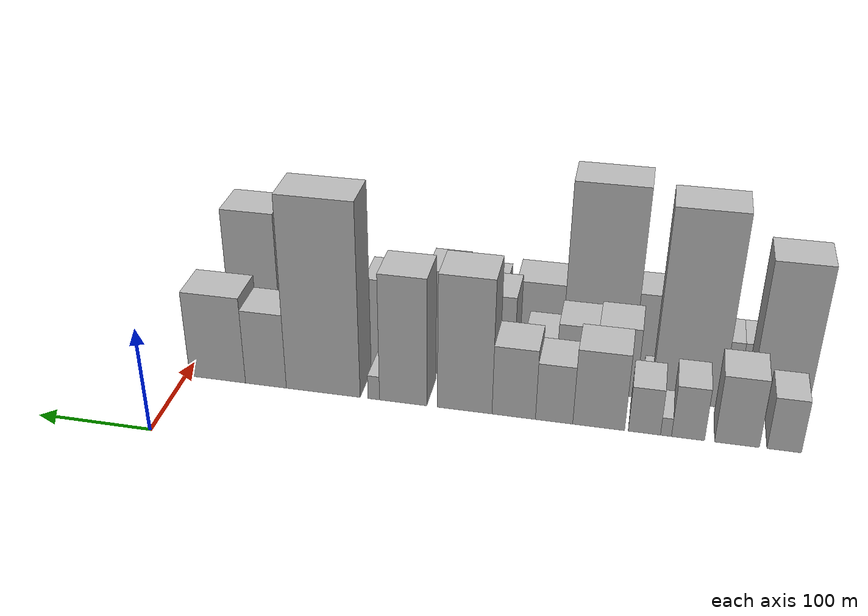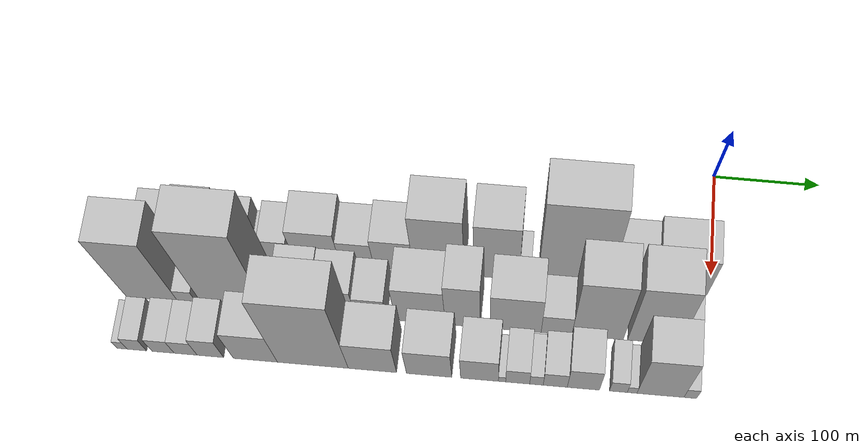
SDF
<sdf version="1.6">
 <world name="default">
  <model name="building_1">
   <static>1</static>
   <pose>100.0000 -515.4191 0 0.000000 0.000000 0.000000</pose>
   <link name="link">
    <pose>0 0 25.50 0 0 0</pose>
    <collision name="collision"><geometry><box><size>40.0000 27.1618 51.0000</size></box></geometry></collision>
    <visual name="visual">
     <cast_shadows>0</cast_shadows>
     <geometry><box><size>40.0000 27.1618 51.0000</size></box></geometry>
     <material>
      <script>
       <uri>model://HANNAS_wall/materials/scripts</uri>
       <uri>model://HANNAS_wall/materials/textures</uri>
       <name>vrc/HANNAS_wall</name>
      </script>
     </material>
    </visual>
   </link>
  </model>
  <model name="building_2">
   <static>1</static>
   <pose>100.0000 -477.9174 0 0.000000 0.000000 0.000000</pose>
   <link name="link">
    <pose>0 0 33.00 0 0 0</pose>
    <collision name="collision"><geometry><box><size>40.0000 35.8415 66.0000</size></box></geometry></collision>
    <visual name="visual">
     <cast_shadows>0</cast_shadows>
     <geometry><box><size>40.0000 35.8415 66.0000</size></box></geometry>
     <material>
      <script>
       <uri>model://HANNAS_wall/materials/scripts</uri>
       <uri>model://HANNAS_wall/materials/textures</uri>
       <name>vrc/HANNAS_wall</name>
      </script>
     </material>
    </visual>
   </link>
  </model>
  <model name="building_3">
   <static>1</static>
   <pose>100.0000 -438.5953 0 0.000000 0.000000 0.000000</pose>
   <link name="link">
    <pose>0 0 25.50 0 0 0</pose>
    <collision name="collision"><geometry><box><size>40.0000 26.8026 51.0000</size></box></geometry></collision>
    <visual name="visual">
     <cast_shadows>0</cast_shadows>
     <geometry><box><size>40.0000 26.8026 51.0000</size></box></geometry>
     <material>
      <script>
       <uri>model://HANNAS_wall/materials/scripts</uri>
       <uri>model://HANNAS_wall/materials/textures</uri>
       <name>vrc/HANNAS_wall</name>
      </script>
     </material>
    </visual>
   </link>
  </model>
  <model name="building_4">
   <static>1</static>
   <pose>100.0000 -420.7293 0 0.000000 0.000000 0.000000</pose>
   <link name="link">
    <pose>0 0 9.00 0 0 0</pose>
    <collision name="collision"><geometry><box><size>40.0000 8.9295 18.0000</size></box></geometry></collision>
    <visual name="visual">
     <cast_shadows>0</cast_shadows>
     <geometry><box><size>40.0000 8.9295 18.0000</size></box></geometry>
     <material>
      <script>
       <uri>model://HANNAS_wall/materials/scripts</uri>
       <uri>model://HANNAS_wall/materials/textures</uri>
       <name>vrc/HANNAS_wall</name>
      </script>
     </material>
    </visual>
   </link>
  </model>
  <model name="building_5">
   <static>1</static>
   <pose>100.0000 -403.0497 0 0.000000 0.000000 0.000000</pose>
   <link name="link">
    <pose>0 0 22.50 0 0 0</pose>
    <collision name="collision"><geometry><box><size>40.0000 26.4296 45.0000</size></box></geometry></collision>
    <visual name="visual">
     <cast_shadows>0</cast_shadows>
     <geometry><box><size>40.0000 26.4296 45.0000</size></box></geometry>
     <material>
      <script>
       <uri>model://HANNAS_wall/materials/scripts</uri>
       <uri>model://HANNAS_wall/materials/textures</uri>
       <name>vrc/HANNAS_wall</name>
      </script>
     </material>
    </visual>
   </link>
  </model>
  <model name="building_6">
   <static>1</static>
   <pose>100.0000 -365.2503 0 0.000000 0.000000 0.000000</pose>
   <link name="link">
    <pose>0 0 37.50 0 0 0</pose>
    <collision name="collision"><geometry><box><size>40.0000 43.1693 75.0000</size></box></geometry></collision>
    <visual name="visual">
     <cast_shadows>0</cast_shadows>
     <geometry><box><size>40.0000 43.1693 75.0000</size></box></geometry>
     <material>
      <script>
       <uri>model://HANNAS_wall/materials/scripts</uri>
       <uri>model://HANNAS_wall/materials/textures</uri>
       <name>vrc/HANNAS_wall</name>
      </script>
     </material>
    </visual>
   </link>
  </model>
  <model name="building_7">
   <static>1</static>
   <pose>100.0000 -327.9551 0 0.000000 0.000000 0.000000</pose>
   <link name="link">
    <pose>0 0 28.50 0 0 0</pose>
    <collision name="collision"><geometry><box><size>40.0000 31.4211 57.0000</size></box></geometry></collision>
    <visual name="visual">
     <cast_shadows>0</cast_shadows>
     <geometry><box><size>40.0000 31.4211 57.0000</size></box></geometry>
     <material>
      <script>
       <uri>model://HANNAS_wall/materials/scripts</uri>
       <uri>model://HANNAS_wall/materials/textures</uri>
       <name>vrc/HANNAS_wall</name>
      </script>
     </material>
    </visual>
   </link>
  </model>
  <model name="building_8">
   <static>1</static>
   <pose>100.0000 -293.7208 0 0.000000 0.000000 0.000000</pose>
   <link name="link">
    <pose>0 0 34.50 0 0 0</pose>
    <collision name="collision"><geometry><box><size>40.0000 37.0474 69.0000</size></box></geometry></collision>
    <visual name="visual">
     <cast_shadows>0</cast_shadows>
     <geometry><box><size>40.0000 37.0474 69.0000</size></box></geometry>
     <material>
      <script>
       <uri>model://HANNAS_wall/materials/scripts</uri>
       <uri>model://HANNAS_wall/materials/textures</uri>
       <name>vrc/HANNAS_wall</name>
      </script>
     </material>
    </visual>
   </link>
  </model>
  <model name="building_9">
   <static>1</static>
   <pose>100.0000 -251.4896 0 0.000000 0.000000 0.000000</pose>
   <link name="link">
    <pose>0 0 66.00 0 0 0</pose>
    <collision name="collision"><geometry><box><size>40.0000 47.4151 132.0000</size></box></geometry></collision>
    <visual name="visual">
     <cast_shadows>0</cast_shadows>
     <geometry><box><size>40.0000 47.4151 132.0000</size></box></geometry>
     <material>
      <script>
       <uri>model://HANNAS_wall/materials/scripts</uri>
       <uri>model://HANNAS_wall/materials/textures</uri>
       <name>vrc/HANNAS_wall</name>
      </script>
     </material>
    </visual>
   </link>
  </model>
  <model name="building_10">
   <static>1</static>
   <pose>100.0000 -197.9140 0 0.000000 0.000000 0.000000</pose>
   <link name="link">
    <pose>0 0 63.00 0 0 0</pose>
    <collision name="collision"><geometry><box><size>40.0000 41.7361 126.0000</size></box></geometry></collision>
    <visual name="visual">
     <cast_shadows>0</cast_shadows>
     <geometry><box><size>40.0000 41.7361 126.0000</size></box></geometry>
     <material>
      <script>
       <uri>model://HANNAS_wall/materials/scripts</uri>
       <uri>model://HANNAS_wall/materials/textures</uri>
       <name>vrc/HANNAS_wall</name>
      </script>
     </material>
    </visual>
   </link>
  </model>
  <model name="building_11">
   <static>1</static>
   <pose>100.0000 -171.9435 0 0.000000 0.000000 0.000000</pose>
   <link name="link">
    <pose>0 0 12.00 0 0 0</pose>
    <collision name="collision"><geometry><box><size>40.0000 10.2050 24.0000</size></box></geometry></collision>
    <visual name="visual">
     <cast_shadows>0</cast_shadows>
     <geometry><box><size>40.0000 10.2050 24.0000</size></box></geometry>
     <material>
      <script>
       <uri>model://HANNAS_wall/materials/scripts</uri>
       <uri>model://HANNAS_wall/materials/textures</uri>
       <name>vrc/HANNAS_wall</name>
      </script>
     </material>
    </visual>
   </link>
  </model>
  <model name="building_12">
   <static>1</static>
   <pose>100.0000 -126.4781 0 0.000000 0.000000 0.000000</pose>
   <link name="link">
    <pose>0 0 94.50 0 0 0</pose>
    <collision name="collision"><geometry><box><size>40.0000 66.7257 189.0000</size></box></geometry></collision>
    <visual name="visual">
     <cast_shadows>0</cast_shadows>
     <geometry><box><size>40.0000 66.7257 189.0000</size></box></geometry>
     <material>
      <script>
       <uri>model://HANNAS_wall/materials/scripts</uri>
       <uri>model://HANNAS_wall/materials/textures</uri>
       <name>vrc/HANNAS_wall</name>
      </script>
     </material>
    </visual>
   </link>
  </model>
  <model name="building_13">
   <static>1</static>
   <pose>100.0000 -74.3532 0 0.000000 0.000000 0.000000</pose>
   <link name="link">
    <pose>0 0 37.50 0 0 0</pose>
    <collision name="collision"><geometry><box><size>40.0000 37.5241 75.0000</size></box></geometry></collision>
    <visual name="visual">
     <cast_shadows>0</cast_shadows>
     <geometry><box><size>40.0000 37.5241 75.0000</size></box></geometry>
     <material>
      <script>
       <uri>model://HANNAS_wall/materials/scripts</uri>
       <uri>model://HANNAS_wall/materials/textures</uri>
       <name>vrc/HANNAS_wall</name>
      </script>
     </material>
    </visual>
   </link>
  </model>
  <model name="building_14">
   <static>1</static>
   <pose>100.0000 -29.5392 0 0.000000 0.000000 0.000000</pose>
   <link name="link">
    <pose>0 0 43.50 0 0 0</pose>
    <collision name="collision"><geometry><box><size>40.0000 52.1041 87.0000</size></box></geometry></collision>
    <visual name="visual">
     <cast_shadows>0</cast_shadows>
     <geometry><box><size>40.0000 52.1041 87.0000</size></box></geometry>
     <material>
      <script>
       <uri>model://HANNAS_wall/materials/scripts</uri>
       <uri>model://HANNAS_wall/materials/textures</uri>
       <name>vrc/HANNAS_wall</name>
      </script>
     </material>
    </visual>
   </link>
  </model>
  <model name="building_31">
   <static>1</static>
   <pose>149.0000 -512.1162 0 0.000000 0.000000 0.000000</pose>
   <link name="link">
    <pose>0 0 73.50 0 0 0</pose>
    <collision name="collision"><geometry><box><size>40.0000 47.7676 147.0000</size></box></geometry></collision>
    <visual name="visual">
     <cast_shadows>0</cast_shadows>
     <geometry><box><size>40.0000 47.7676 147.0000</size></box></geometry>
     <material>
      <script>
       <uri>model://HANNAS_wall/materials/scripts</uri>
       <uri>model://HANNAS_wall/materials/textures</uri>
       <name>vrc/HANNAS_wall</name>
      </script>
     </material>
    </visual>
   </link>
  </model>
  <model name="building_32">
   <static>1</static>
   <pose>149.0000 -479.6060 0 0.000000 0.000000 0.000000</pose>
   <link name="link">
    <pose>0 0 15.00 0 0 0</pose>
    <collision name="collision"><geometry><box><size>40.0000 17.2528 30.0000</size></box></geometry></collision>
    <visual name="visual">
     <cast_shadows>0</cast_shadows>
     <geometry><box><size>40.0000 17.2528 30.0000</size></box></geometry>
     <material>
      <script>
       <uri>model://HANNAS_wall/materials/scripts</uri>
       <uri>model://HANNAS_wall/materials/textures</uri>
       <name>vrc/HANNAS_wall</name>
      </script>
     </material>
    </visual>
   </link>
  </model>
  <model name="building_33">
   <static>1</static>
   <pose>149.0000 -436.1986 0 0.000000 0.000000 0.000000</pose>
   <link name="link">
    <pose>0 0 93.00 0 0 0</pose>
    <collision name="collision"><geometry><box><size>40.0000 59.5618 186.0000</size></box></geometry></collision>
    <visual name="visual">
     <cast_shadows>0</cast_shadows>
     <geometry><box><size>40.0000 59.5618 186.0000</size></box></geometry>
     <material>
      <script>
       <uri>model://HANNAS_wall/materials/scripts</uri>
       <uri>model://HANNAS_wall/materials/textures</uri>
       <name>vrc/HANNAS_wall</name>
      </script>
     </material>
    </visual>
   </link>
  </model>
  <model name="building_34">
   <static>1</static>
   <pose>149.0000 -402.4930 0 0.000000 0.000000 0.000000</pose>
   <link name="link">
    <pose>0 0 9.00 0 0 0</pose>
    <collision name="collision"><geometry><box><size>40.0000 7.8494 18.0000</size></box></geometry></collision>
    <visual name="visual">
     <cast_shadows>0</cast_shadows>
     <geometry><box><size>40.0000 7.8494 18.0000</size></box></geometry>
     <material>
      <script>
       <uri>model://HANNAS_wall/materials/scripts</uri>
       <uri>model://HANNAS_wall/materials/textures</uri>
       <name>vrc/HANNAS_wall</name>
      </script>
     </material>
    </visual>
   </link>
  </model>
  <model name="building_35">
   <static>1</static>
   <pose>149.0000 -375.4442 0 0.000000 0.000000 0.000000</pose>
   <link name="link">
    <pose>0 0 34.50 0 0 0</pose>
    <collision name="collision"><geometry><box><size>40.0000 36.2482 69.0000</size></box></geometry></collision>
    <visual name="visual">
     <cast_shadows>0</cast_shadows>
     <geometry><box><size>40.0000 36.2482 69.0000</size></box></geometry>
     <material>
      <script>
       <uri>model://HANNAS_wall/materials/scripts</uri>
       <uri>model://HANNAS_wall/materials/textures</uri>
       <name>vrc/HANNAS_wall</name>
      </script>
     </material>
    </visual>
   </link>
  </model>
  <model name="building_36">
   <static>1</static>
   <pose>149.0000 -340.3787 0 0.000000 0.000000 0.000000</pose>
   <link name="link">
    <pose>0 0 33.00 0 0 0</pose>
    <collision name="collision"><geometry><box><size>40.0000 33.8828 66.0000</size></box></geometry></collision>
    <visual name="visual">
     <cast_shadows>0</cast_shadows>
     <geometry><box><size>40.0000 33.8828 66.0000</size></box></geometry>
     <material>
      <script>
       <uri>model://HANNAS_wall/materials/scripts</uri>
       <uri>model://HANNAS_wall/materials/textures</uri>
       <name>vrc/HANNAS_wall</name>
      </script>
     </material>
    </visual>
   </link>
  </model>
  <model name="building_37">
   <static>1</static>
   <pose>149.0000 -309.0420 0 0.000000 0.000000 0.000000</pose>
   <link name="link">
    <pose>0 0 25.50 0 0 0</pose>
    <collision name="collision"><geometry><box><size>40.0000 28.7906 51.0000</size></box></geometry></collision>
    <visual name="visual">
     <cast_shadows>0</cast_shadows>
     <geometry><box><size>40.0000 28.7906 51.0000</size></box></geometry>
     <material>
      <script>
       <uri>model://HANNAS_wall/materials/scripts</uri>
       <uri>model://HANNAS_wall/materials/textures</uri>
       <name>vrc/HANNAS_wall</name>
      </script>
     </material>
    </visual>
   </link>
  </model>
  <model name="building_38">
   <static>1</static>
   <pose>149.0000 -263.7271 0 0.000000 0.000000 0.000000</pose>
   <link name="link">
    <pose>0 0 43.50 0 0 0</pose>
    <collision name="collision"><geometry><box><size>40.0000 45.8391 87.0000</size></box></geometry></collision>
    <visual name="visual">
     <cast_shadows>0</cast_shadows>
     <geometry><box><size>40.0000 45.8391 87.0000</size></box></geometry>
     <material>
      <script>
       <uri>model://HANNAS_wall/materials/scripts</uri>
       <uri>model://HANNAS_wall/materials/textures</uri>
       <name>vrc/HANNAS_wall</name>
      </script>
     </material>
    </visual>
   </link>
  </model>
  <model name="building_39">
   <static>1</static>
   <pose>149.0000 -224.7799 0 0.000000 0.000000 0.000000</pose>
   <link name="link">
    <pose>0 0 52.50 0 0 0</pose>
    <collision name="collision"><geometry><box><size>40.0000 32.0554 105.0000</size></box></geometry></collision>
    <visual name="visual">
     <cast_shadows>0</cast_shadows>
     <geometry><box><size>40.0000 32.0554 105.0000</size></box></geometry>
     <material>
      <script>
       <uri>model://HANNAS_wall/materials/scripts</uri>
       <uri>model://HANNAS_wall/materials/textures</uri>
       <name>vrc/HANNAS_wall</name>
      </script>
     </material>
    </visual>
   </link>
  </model>
  <model name="building_40">
   <static>1</static>
   <pose>149.0000 -176.3824 0 0.000000 0.000000 0.000000</pose>
   <link name="link">
    <pose>0 0 45.00 0 0 0</pose>
    <collision name="collision"><geometry><box><size>40.0000 46.7395 90.0000</size></box></geometry></collision>
    <visual name="visual">
     <cast_shadows>0</cast_shadows>
     <geometry><box><size>40.0000 46.7395 90.0000</size></box></geometry>
     <material>
      <script>
       <uri>model://HANNAS_wall/materials/scripts</uri>
       <uri>model://HANNAS_wall/materials/textures</uri>
       <name>vrc/HANNAS_wall</name>
      </script>
     </material>
    </visual>
   </link>
  </model>
  <model name="building_41">
   <static>1</static>
   <pose>149.0000 -138.9929 0 0.000000 0.000000 0.000000</pose>
   <link name="link">
    <pose>0 0 24.00 0 0 0</pose>
    <collision name="collision"><geometry><box><size>40.0000 28.0394 48.0000</size></box></geometry></collision>
    <visual name="visual">
     <cast_shadows>0</cast_shadows>
     <geometry><box><size>40.0000 28.0394 48.0000</size></box></geometry>
     <material>
      <script>
       <uri>model://HANNAS_wall/materials/scripts</uri>
       <uri>model://HANNAS_wall/materials/textures</uri>
       <name>vrc/HANNAS_wall</name>
      </script>
     </material>
    </visual>
   </link>
  </model>
  <model name="building_42">
   <static>1</static>
   <pose>149.0000 -101.4500 0 0.000000 0.000000 0.000000</pose>
   <link name="link">
    <pose>0 0 72.00 0 0 0</pose>
    <collision name="collision"><geometry><box><size>40.0000 47.0464 144.0000</size></box></geometry></collision>
    <visual name="visual">
     <cast_shadows>0</cast_shadows>
     <geometry><box><size>40.0000 47.0464 144.0000</size></box></geometry>
     <material>
      <script>
       <uri>model://HANNAS_wall/materials/scripts</uri>
       <uri>model://HANNAS_wall/materials/textures</uri>
       <name>vrc/HANNAS_wall</name>
      </script>
     </material>
    </visual>
   </link>
  </model>
  <model name="building_43">
   <static>1</static>
   <pose>149.0000 -50.2322 0 0.000000 0.000000 0.000000</pose>
   <link name="link">
    <pose>0 0 72.00 0 0 0</pose>
    <collision name="collision"><geometry><box><size>40.0000 47.3893 144.0000</size></box></geometry></collision>
    <visual name="visual">
     <cast_shadows>0</cast_shadows>
     <geometry><box><size>40.0000 47.3893 144.0000</size></box></geometry>
     <material>
      <script>
       <uri>model://HANNAS_wall/materials/scripts</uri>
       <uri>model://HANNAS_wall/materials/textures</uri>
       <name>vrc/HANNAS_wall</name>
      </script>
     </material>
    </visual>
   </link>
  </model>
  <model name="building_44">
   <static>1</static>
   <pose>149.0000 -14.0285 0 0.000000 0.000000 0.000000</pose>
   <link name="link">
    <pose>0 0 13.50 0 0 0</pose>
    <collision name="collision"><geometry><box><size>40.0000 11.0180 27.0000</size></box></geometry></collision>
    <visual name="visual">
     <cast_shadows>0</cast_shadows>
     <geometry><box><size>40.0000 11.0180 27.0000</size></box></geometry>
     <material>
      <script>
       <uri>model://HANNAS_wall/materials/scripts</uri>
       <uri>model://HANNAS_wall/materials/textures</uri>
       <name>vrc/HANNAS_wall</name>
      </script>
     </material>
    </visual>
   </link>
  </model>
  <model name="building_61">
   <static>1</static>
   <pose>198.0000 -531.2364 0 0.000000 0.000000 0.000000</pose>
   <link name="link">
    <pose>0 0 10.50 0 0 0</pose>
    <collision name="collision"><geometry><box><size>40.0000 9.5272 21.0000</size></box></geometry></collision>
    <visual name="visual">
     <cast_shadows>0</cast_shadows>
     <geometry><box><size>40.0000 9.5272 21.0000</size></box></geometry>
     <material>
      <script>
       <uri>model://HANNAS_wall/materials/scripts</uri>
       <uri>model://HANNAS_wall/materials/textures</uri>
       <name>vrc/HANNAS_wall</name>
      </script>
     </material>
    </visual>
   </link>
  </model>
  <model name="building_62">
   <static>1</static>
   <pose>198.0000 -517.5872 0 0.000000 0.000000 0.000000</pose>
   <link name="link">
    <pose>0 0 16.50 0 0 0</pose>
    <collision name="collision"><geometry><box><size>40.0000 17.7712 33.0000</size></box></geometry></collision>
    <visual name="visual">
     <cast_shadows>0</cast_shadows>
     <geometry><box><size>40.0000 17.7712 33.0000</size></box></geometry>
     <material>
      <script>
       <uri>model://HANNAS_wall/materials/scripts</uri>
       <uri>model://HANNAS_wall/materials/textures</uri>
       <name>vrc/HANNAS_wall</name>
      </script>
     </material>
    </visual>
   </link>
  </model>
  <model name="building_63">
   <static>1</static>
   <pose>198.0000 -493.5431 0 0.000000 0.000000 0.000000</pose>
   <link name="link">
    <pose>0 0 18.00 0 0 0</pose>
    <collision name="collision"><geometry><box><size>40.0000 20.3170 36.0000</size></box></geometry></collision>
    <visual name="visual">
     <cast_shadows>0</cast_shadows>
     <geometry><box><size>40.0000 20.3170 36.0000</size></box></geometry>
     <material>
      <script>
       <uri>model://HANNAS_wall/materials/scripts</uri>
       <uri>model://HANNAS_wall/materials/textures</uri>
       <name>vrc/HANNAS_wall</name>
      </script>
     </material>
    </visual>
   </link>
  </model>
  <model name="building_64">
   <static>1</static>
   <pose>198.0000 -472.8137 0 0.000000 0.000000 0.000000</pose>
   <link name="link">
    <pose>0 0 18.00 0 0 0</pose>
    <collision name="collision"><geometry><box><size>40.0000 21.1417 36.0000</size></box></geometry></collision>
    <visual name="visual">
     <cast_shadows>0</cast_shadows>
     <geometry><box><size>40.0000 21.1417 36.0000</size></box></geometry>
     <material>
      <script>
       <uri>model://HANNAS_wall/materials/scripts</uri>
       <uri>model://HANNAS_wall/materials/textures</uri>
       <name>vrc/HANNAS_wall</name>
      </script>
     </material>
    </visual>
   </link>
  </model>
  <model name="building_65">
   <static>1</static>
   <pose>198.0000 -450.1372 0 0.000000 0.000000 0.000000</pose>
   <link name="link">
    <pose>0 0 24.00 0 0 0</pose>
    <collision name="collision"><geometry><box><size>40.0000 24.2114 48.0000</size></box></geometry></collision>
    <visual name="visual">
     <cast_shadows>0</cast_shadows>
     <geometry><box><size>40.0000 24.2114 48.0000</size></box></geometry>
     <material>
      <script>
       <uri>model://HANNAS_wall/materials/scripts</uri>
       <uri>model://HANNAS_wall/materials/textures</uri>
       <name>vrc/HANNAS_wall</name>
      </script>
     </material>
    </visual>
   </link>
  </model>
  <model name="building_66">
   <static>1</static>
   <pose>198.0000 -408.8999 0 0.000000 0.000000 0.000000</pose>
   <link name="link">
    <pose>0 0 37.50 0 0 0</pose>
    <collision name="collision"><geometry><box><size>40.0000 40.2631 75.0000</size></box></geometry></collision>
    <visual name="visual">
     <cast_shadows>0</cast_shadows>
     <geometry><box><size>40.0000 40.2631 75.0000</size></box></geometry>
     <material>
      <script>
       <uri>model://HANNAS_wall/materials/scripts</uri>
       <uri>model://HANNAS_wall/materials/textures</uri>
       <name>vrc/HANNAS_wall</name>
      </script>
     </material>
    </visual>
   </link>
  </model>
  <model name="building_67">
   <static>1</static>
   <pose>198.0000 -356.4191 0 0.000000 0.000000 0.000000</pose>
   <link name="link">
    <pose>0 0 88.50 0 0 0</pose>
    <collision name="collision"><geometry><box><size>40.0000 64.6985 177.0000</size></box></geometry></collision>
    <visual name="visual">
     <cast_shadows>0</cast_shadows>
     <geometry><box><size>40.0000 64.6985 177.0000</size></box></geometry>
     <material>
      <script>
       <uri>model://HANNAS_wall/materials/scripts</uri>
       <uri>model://HANNAS_wall/materials/textures</uri>
       <name>vrc/HANNAS_wall</name>
      </script>
     </material>
    </visual>
   </link>
  </model>
  <model name="building_68">
   <static>1</static>
   <pose>198.0000 -302.1386 0 0.000000 0.000000 0.000000</pose>
   <link name="link">
    <pose>0 0 37.50 0 0 0</pose>
    <collision name="collision"><geometry><box><size>40.0000 43.8625 75.0000</size></box></geometry></collision>
    <visual name="visual">
     <cast_shadows>0</cast_shadows>
     <geometry><box><size>40.0000 43.8625 75.0000</size></box></geometry>
     <material>
      <script>
       <uri>model://HANNAS_wall/materials/scripts</uri>
       <uri>model://HANNAS_wall/materials/textures</uri>
       <name>vrc/HANNAS_wall</name>
      </script>
     </material>
    </visual>
   </link>
  </model>
  <model name="building_69">
   <static>1</static>
   <pose>198.0000 -250.6526 0 0.000000 0.000000 0.000000</pose>
   <link name="link">
    <pose>0 0 34.50 0 0 0</pose>
    <collision name="collision"><geometry><box><size>40.0000 41.1093 69.0000</size></box></geometry></collision>
    <visual name="visual">
     <cast_shadows>0</cast_shadows>
     <geometry><box><size>40.0000 41.1093 69.0000</size></box></geometry>
     <material>
      <script>
       <uri>model://HANNAS_wall/materials/scripts</uri>
       <uri>model://HANNAS_wall/materials/textures</uri>
       <name>vrc/HANNAS_wall</name>
      </script>
     </material>
    </visual>
   </link>
  </model>
  <model name="building_70">
   <static>1</static>
   <pose>198.0000 -205.0424 0 0.000000 0.000000 0.000000</pose>
   <link name="link">
    <pose>0 0 30.00 0 0 0</pose>
    <collision name="collision"><geometry><box><size>40.0000 34.1110 60.0000</size></box></geometry></collision>
    <visual name="visual">
     <cast_shadows>0</cast_shadows>
     <geometry><box><size>40.0000 34.1110 60.0000</size></box></geometry>
     <material>
      <script>
       <uri>model://HANNAS_wall/materials/scripts</uri>
       <uri>model://HANNAS_wall/materials/textures</uri>
       <name>vrc/HANNAS_wall</name>
      </script>
     </material>
    </visual>
   </link>
  </model>
  <model name="building_71">
   <static>1</static>
   <pose>198.0000 -184.6856 0 0.000000 0.000000 0.000000</pose>
   <link name="link">
    <pose>0 0 7.50 0 0 0</pose>
    <collision name="collision"><geometry><box><size>40.0000 6.6028 15.0000</size></box></geometry></collision>
    <visual name="visual">
     <cast_shadows>0</cast_shadows>
     <geometry><box><size>40.0000 6.6028 15.0000</size></box></geometry>
     <material>
      <script>
       <uri>model://HANNAS_wall/materials/scripts</uri>
       <uri>model://HANNAS_wall/materials/textures</uri>
       <name>vrc/HANNAS_wall</name>
      </script>
     </material>
    </visual>
   </link>
  </model>
  <model name="building_72">
   <static>1</static>
   <pose>198.0000 -170.5244 0 0.000000 0.000000 0.000000</pose>
   <link name="link">
    <pose>0 0 19.50 0 0 0</pose>
    <collision name="collision"><geometry><box><size>40.0000 21.7196 39.0000</size></box></geometry></collision>
    <visual name="visual">
     <cast_shadows>0</cast_shadows>
     <geometry><box><size>40.0000 21.7196 39.0000</size></box></geometry>
     <material>
      <script>
       <uri>model://HANNAS_wall/materials/scripts</uri>
       <uri>model://HANNAS_wall/materials/textures</uri>
       <name>vrc/HANNAS_wall</name>
      </script>
     </material>
    </visual>
   </link>
  </model>
  <model name="building_73">
   <static>1</static>
   <pose>198.0000 -153.5845 0 0.000000 0.000000 0.000000</pose>
   <link name="link">
    <pose>0 0 13.50 0 0 0</pose>
    <collision name="collision"><geometry><box><size>40.0000 12.1603 27.0000</size></box></geometry></collision>
    <visual name="visual">
     <cast_shadows>0</cast_shadows>
     <geometry><box><size>40.0000 12.1603 27.0000</size></box></geometry>
     <material>
      <script>
       <uri>model://HANNAS_wall/materials/scripts</uri>
       <uri>model://HANNAS_wall/materials/textures</uri>
       <name>vrc/HANNAS_wall</name>
      </script>
     </material>
    </visual>
   </link>
  </model>
  <model name="building_74">
   <static>1</static>
   <pose>198.0000 -136.6719 0 0.000000 0.000000 0.000000</pose>
   <link name="link">
    <pose>0 0 19.50 0 0 0</pose>
    <collision name="collision"><geometry><box><size>40.0000 21.6650 39.0000</size></box></geometry></collision>
    <visual name="visual">
     <cast_shadows>0</cast_shadows>
     <geometry><box><size>40.0000 21.6650 39.0000</size></box></geometry>
     <material>
      <script>
       <uri>model://HANNAS_wall/materials/scripts</uri>
       <uri>model://HANNAS_wall/materials/textures</uri>
       <name>vrc/HANNAS_wall</name>
      </script>
     </material>
    </visual>
   </link>
  </model>
  <model name="building_75">
   <static>1</static>
   <pose>198.0000 -111.2808 0 0.000000 0.000000 0.000000</pose>
   <link name="link">
    <pose>0 0 28.50 0 0 0</pose>
    <collision name="collision"><geometry><box><size>40.0000 29.1170 57.0000</size></box></geometry></collision>
    <visual name="visual">
     <cast_shadows>0</cast_shadows>
     <geometry><box><size>40.0000 29.1170 57.0000</size></box></geometry>
     <material>
      <script>
       <uri>model://HANNAS_wall/materials/scripts</uri>
       <uri>model://HANNAS_wall/materials/textures</uri>
       <name>vrc/HANNAS_wall</name>
      </script>
     </material>
    </visual>
   </link>
  </model>
  <model name="building_76">
   <static>1</static>
   <pose>198.0000 -79.7653 0 0.000000 0.000000 0.000000</pose>
   <link name="link">
    <pose>0 0 15.00 0 0 0</pose>
    <collision name="collision"><geometry><box><size>40.0000 15.9142 30.0000</size></box></geometry></collision>
    <visual name="visual">
     <cast_shadows>0</cast_shadows>
     <geometry><box><size>40.0000 15.9142 30.0000</size></box></geometry>
     <material>
      <script>
       <uri>model://HANNAS_wall/materials/scripts</uri>
       <uri>model://HANNAS_wall/materials/textures</uri>
       <name>vrc/HANNAS_wall</name>
      </script>
     </material>
    </visual>
   </link>
  </model>
  <model name="building_77">
   <static>1</static>
   <pose>198.0000 -67.4274 0 0.000000 0.000000 0.000000</pose>
   <link name="link">
    <pose>0 0 9.00 0 0 0</pose>
    <collision name="collision"><geometry><box><size>40.0000 8.7616 18.0000</size></box></geometry></collision>
    <visual name="visual">
     <cast_shadows>0</cast_shadows>
     <geometry><box><size>40.0000 8.7616 18.0000</size></box></geometry>
     <material>
      <script>
       <uri>model://HANNAS_wall/materials/scripts</uri>
       <uri>model://HANNAS_wall/materials/textures</uri>
       <name>vrc/HANNAS_wall</name>
      </script>
     </material>
    </visual>
   </link>
  </model>
  <model name="building_78">
   <static>1</static>
   <pose>198.0000 -41.9660 0 0.000000 0.000000 0.000000</pose>
   <link name="link">
    <pose>0 0 54.00 0 0 0</pose>
    <collision name="collision"><geometry><box><size>40.0000 42.1612 108.0000</size></box></geometry></collision>
    <visual name="visual">
     <cast_shadows>0</cast_shadows>
     <geometry><box><size>40.0000 42.1612 108.0000</size></box></geometry>
     <material>
      <script>
       <uri>model://HANNAS_wall/materials/scripts</uri>
       <uri>model://HANNAS_wall/materials/textures</uri>
       <name>vrc/HANNAS_wall</name>
      </script>
     </material>
    </visual>
   </link>
  </model>
  <model name="building_79">
   <static>1</static>
   <pose>198.0000 -15.1527 0 0.000000 0.000000 0.000000</pose>
   <link name="link">
    <pose>0 0 13.50 0 0 0</pose>
    <collision name="collision"><geometry><box><size>40.0000 11.4653 27.0000</size></box></geometry></collision>
    <visual name="visual">
     <cast_shadows>0</cast_shadows>
     <geometry><box><size>40.0000 11.4653 27.0000</size></box></geometry>
     <material>
      <script>
       <uri>model://HANNAS_wall/materials/scripts</uri>
       <uri>model://HANNAS_wall/materials/textures</uri>
       <name>vrc/HANNAS_wall</name>
      </script>
     </material>
    </visual>
   </link>
  </model>
 </world>
</sdf>
